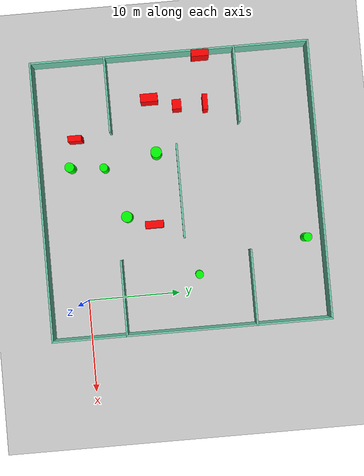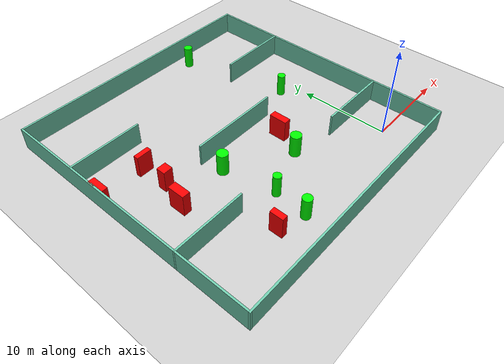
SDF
<sdf version="1.7">
 <world name="default">
  <light name="sun" type="directional">
   <pose>0 0 10 0 -0 0</pose>
   <diffuse>0.8 0.8 0.8 1</diffuse>
   <specular>0.2 0.2 0.2 1</specular>
   <attenuation>
    <range>1000</range>
    <constant>0.9</constant>
    <linear>0.01</linear>
    <quadratic>0.001</quadratic>
   </attenuation>
   <direction>-0.5 0.1 -0.9</direction>
   <spot><inner_angle>0</inner_angle><outer_angle>0</outer_angle><falloff>0</falloff></spot>
  </light>
  <model name="ground_plane">
   <static>1</static>
   <link name="link">
    <collision name="collision">
     <geometry><plane><normal>0 0 1</normal><size>100 100</size></plane></geometry>
     <surface>
      <contact><collide_bitmask>65535</collide_bitmask></contact>
      <friction><ode><mu>100</mu><mu2>50</mu2></ode></friction>
     </surface>
    </collision>
    <visual name="visual">
     <cast_shadows>0</cast_shadows>
     <geometry><plane><normal>0 0 1</normal><size>100 100</size></plane></geometry>
     <material>
      <script><uri>file://media/materials/scripts/gazebo.material</uri><name>Gazebo/Grey</name></script>
     </material>
    </visual>
   </link>
  </model>
  <gravity>0 0 -9.8</gravity>
  <magnetic_field>6e-06 2.3e-05 -4.2e-05</magnetic_field>
  <atmosphere type="adiabatic"/>
  <physics type="ode">
   <max_step_size>0.001</max_step_size>
   <real_time_factor>1</real_time_factor>
   <real_time_update_rate>1000</real_time_update_rate>
  </physics>
  <scene><ambient>0.4 0.4 0.4 1</ambient><background>0.7 0.7 0.7 1</background><shadows>1</shadows></scene>
  <spherical_coordinates>
   <surface_model>EARTH_WGS84</surface_model>
   <latitude_deg>0</latitude_deg>
   <longitude_deg>0</longitude_deg>
   <elevation>0</elevation>
   <heading_deg>0</heading_deg>
  </spherical_coordinates>
  <model name="my_base_walls">
   <link name="Wall_10">
    <collision name="Wall_10_Collision">
     <geometry><box><size>8.2 0.2 2.5</size></box></geometry>
     <pose>0 0 1.25 0 -0 0</pose>
    </collision>
    <visual name="Wall_10_Visual">
     <pose>0 0 1.25 0 -0 0</pose>
     <geometry><box><size>8.2 0.2 2.5</size></box></geometry>
     <material>
      <script><uri>file://media/materials/scripts/gazebo.material</uri><name>Gazebo/Grey</name></script>
      <ambient>0.435294 0.796078 0.67451 1</ambient>
     </material>
     <meta><layer>0</layer></meta>
    </visual>
    <pose>-11 -7 0 0 -0 0</pose>
   </link>
   <link name="Wall_12">
    <collision name="Wall_12_Collision">
     <geometry><box><size>8.2 0.2 2.5</size></box></geometry>
     <pose>0 0 1.25 0 -0 0</pose>
    </collision>
    <visual name="Wall_12_Visual">
     <pose>0 0 1.25 0 -0 0</pose>
     <geometry><box><size>8.2 0.2 2.5</size></box></geometry>
     <material>
      <script><uri>file://media/materials/scripts/gazebo.material</uri><name>Gazebo/Grey</name></script>
      <ambient>0.435294 0.796078 0.67451 1</ambient>
     </material>
     <meta><layer>0</layer></meta>
    </visual>
    <pose>-11 7 0 0 -0 0</pose>
   </link>
   <link name="Wall_14">
    <collision name="Wall_14_Collision">
     <geometry><box><size>8.2 0.2 2.5</size></box></geometry>
     <pose>0 0 1.25 0 -0 0</pose>
    </collision>
    <visual name="Wall_14_Visual">
     <pose>0 0 1.25 0 -0 0</pose>
     <geometry><box><size>8.2 0.2 2.5</size></box></geometry>
     <material>
      <script><uri>file://media/materials/scripts/gazebo.material</uri><name>Gazebo/Grey</name></script>
      <ambient>0.435294 0.796078 0.67451 1</ambient>
     </material>
     <meta><layer>0</layer></meta>
    </visual>
    <pose>11 7 0 0 -0 3.14159</pose>
   </link>
   <link name="Wall_16">
    <collision name="Wall_16_Collision">
     <geometry><box><size>10.2 0.2 2.5</size></box></geometry>
     <pose>0 0 1.25 0 -0 0</pose>
    </collision>
    <visual name="Wall_16_Visual">
     <pose>0 0 1.25 0 -0 0</pose>
     <geometry><box><size>10.2 0.2 2.5</size></box></geometry>
     <material>
      <script><uri>file://media/materials/scripts/gazebo.material</uri><name>Gazebo/Grey</name></script>
      <ambient>0.435294 0.796078 0.67451 1</ambient>
     </material>
     <meta><layer>0</layer></meta>
    </visual>
    <pose>0 0 0 0 -0 3.14159</pose>
   </link>
   <link name="Wall_2">
    <collision name="Wall_2_Collision">
     <geometry><box><size>30.2 0.2 2.5</size></box></geometry>
     <pose>0 0 1.25 0 -0 0</pose>
    </collision>
    <visual name="Wall_2_Visual">
     <pose>0 0 1.25 0 -0 0</pose>
     <geometry><box><size>30.2 0.2 2.5</size></box></geometry>
     <material>
      <script><uri>file://media/materials/scripts/gazebo.material</uri><name>Gazebo/Grey</name></script>
      <ambient>0.435294 0.796078 0.67451 1</ambient>
     </material>
     <meta><layer>0</layer></meta>
    </visual>
    <pose>0 -15 0 0 -0 3.14159</pose>
   </link>
   <link name="Wall_3">
    <collision name="Wall_3_Collision">
     <geometry><box><size>30.2 0.2 2.5</size></box></geometry>
     <pose>0 0 1.25 0 -0 0</pose>
    </collision>
    <visual name="Wall_3_Visual">
     <pose>0 0 1.25 0 -0 0</pose>
     <geometry><box><size>30.2 0.2 2.5</size></box></geometry>
     <material>
      <script><uri>file://media/materials/scripts/gazebo.material</uri><name>Gazebo/Grey</name></script>
      <ambient>0.435294 0.796078 0.67451 1</ambient>
     </material>
     <meta><layer>0</layer></meta>
    </visual>
    <pose>-15 0 0 0 -0 1.5708</pose>
   </link>
   <link name="Wall_4">
    <collision name="Wall_4_Collision">
     <geometry><box><size>30.2 0.2 2.5</size></box></geometry>
     <pose>0 0 1.25 0 -0 0</pose>
    </collision>
    <visual name="Wall_4_Visual">
     <pose>0 0 1.25 0 -0 0</pose>
     <geometry><box><size>30.2 0.2 2.5</size></box></geometry>
     <material>
      <script><uri>file://media/materials/scripts/gazebo.material</uri><name>Gazebo/Grey</name></script>
      <ambient>0.435294 0.796078 0.67451 1</ambient>
     </material>
     <meta><layer>0</layer></meta>
    </visual>
    <pose>0 15 0 0 -0 0</pose>
   </link>
   <link name="Wall_6">
    <collision name="Wall_6_Collision">
     <geometry><box><size>30.2 0.2 2.5</size></box></geometry>
     <pose>0 0 1.25 0 -0 0</pose>
    </collision>
    <visual name="Wall_6_Visual">
     <pose>0 0 1.25 0 -0 0</pose>
     <geometry><box><size>30.2 0.2 2.5</size></box></geometry>
     <material>
      <script><uri>file://media/materials/scripts/gazebo.material</uri><name>Gazebo/Grey</name></script>
      <ambient>0.435294 0.796078 0.67451 1</ambient>
     </material>
     <meta><layer>0</layer></meta>
    </visual>
    <pose>15 0 0 0 -0 1.5708</pose>
   </link>
   <link name="Wall_8">
    <collision name="Wall_8_Collision">
     <geometry><box><size>8.2 0.2 2.5</size></box></geometry>
     <pose>0 0 1.25 0 -0 0</pose>
    </collision>
    <visual name="Wall_8_Visual">
     <pose>0 0 1.25 0 -0 0</pose>
     <geometry><box><size>8.2 0.2 2.5</size></box></geometry>
     <material>
      <script><uri>file://media/materials/scripts/gazebo.material</uri><name>Gazebo/Grey</name></script>
      <ambient>0.435294 0.796078 0.67451 1</ambient>
     </material>
     <meta><layer>0</layer></meta>
    </visual>
    <pose>11 -7 0 0 -0 3.14159</pose>
   </link>
   <static>1</static>
   <pose>-11 11 0 0 -0 0</pose>
  </model>
  <model name="cylinder1">
   <static>1</static>
   <link name="link">
    <inertial>
     <mass>1</mass>
     <inertia><ixx>0.5</ixx><ixy>0</ixy><ixz>0</ixz><iyy>0.5</iyy><iyz>0</iyz><izz>1</izz></inertia>
    </inertial>
    <collision name="collision">
     <geometry><cylinder><radius>0.5119095114234558</radius><length>2.5</length></cylinder></geometry>
    </collision>
    <visual name="visual">
     <geometry><cylinder><radius>0.5119095114234558</radius><length>2.5</length></cylinder></geometry>
     <material>
      <ambient>0 1 0 1</ambient>
      <diffuse>0 1 0 1</diffuse>
      <specular>0.1 0.1 0.1 1</specular>
      <emissive>0 0 0 0</emissive>
     </material>
    </visual>
   </link>
   <pose>-14.506941030381133 -0.6643637389633557 1.25 0 0 0</pose>
  </model>
  <model name="cylinder2">
   <static>1</static>
   <link name="link">
    <inertial>
     <mass>1</mass>
     <inertia><ixx>0.5</ixx><ixy>0</ixy><ixz>0</ixz><iyy>0.5</iyy><iyz>0</iyz><izz>1</izz></inertia>
    </inertial>
    <collision name="collision">
     <geometry><cylinder><radius>0.47145731628303383</radius><length>2.5</length></cylinder></geometry>
    </collision>
    <visual name="visual">
     <geometry><cylinder><radius>0.47145731628303383</radius><length>2.5</length></cylinder></geometry>
     <material>
      <ambient>0 1 0 1</ambient>
      <diffuse>0 1 0 1</diffuse>
      <specular>0.1 0.1 0.1 1</specular>
      <emissive>0 0 0 0</emissive>
     </material>
    </visual>
   </link>
   <pose>-4.87040518404838 24.166180957121714 1.25 0 0 0</pose>
  </model>
  <model name="cylinder3">
   <static>1</static>
   <link name="link">
    <inertial>
     <mass>1</mass>
     <inertia><ixx>0.5</ixx><ixy>0</ixy><ixz>0</ixz><iyy>0.5</iyy><iyz>0</iyz><izz>1</izz></inertia>
    </inertial>
    <collision name="collision">
     <geometry><cylinder><radius>0.6024055432394579</radius><length>2.5</length></cylinder></geometry>
    </collision>
    <visual name="visual">
     <geometry><cylinder><radius>0.6024055432394579</radius><length>2.5</length></cylinder></geometry>
     <material>
      <ambient>0 1 0 1</ambient>
      <diffuse>0 1 0 1</diffuse>
      <specular>0.1 0.1 0.1 1</specular>
      <emissive>0 0 0 0</emissive>
     </material>
    </visual>
   </link>
   <pose>-15.343286615840876 8.744399276515534 1.25 0 0 0</pose>
  </model>
  <model name="cylinder4">
   <static>1</static>
   <link name="link">
    <inertial>
     <mass>1</mass>
     <inertia><ixx>0.5</ixx><ixy>0</ixy><ixz>0</ixz><iyy>0.5</iyy><iyz>0</iyz><izz>1</izz></inertia>
    </inertial>
    <collision name="collision">
     <geometry><cylinder><radius>0.5991107325434945</radius><length>2.5</length></cylinder></geometry>
    </collision>
    <visual name="visual">
     <geometry><cylinder><radius>0.5991107325434945</radius><length>2.5</length></cylinder></geometry>
     <material>
      <ambient>0 1 0 1</ambient>
      <diffuse>0 1 0 1</diffuse>
      <specular>0.1 0.1 0.1 1</specular>
      <emissive>0 0 0 0</emissive>
     </material>
    </visual>
   </link>
   <pose>-8.686007811135834 5.0272024769599515 1.25 0 0 0</pose>
  </model>
  <model name="cylinder5">
   <static>1</static>
   <link name="link">
    <inertial>
     <mass>1</mass>
     <inertia><ixx>0.5</ixx><ixy>0</ixy><ixz>0</ixz><iyy>0.5</iyy><iyz>0</iyz><izz>1</izz></inertia>
    </inertial>
    <collision name="collision">
     <geometry><cylinder><radius>0.43311361411054866</radius><length>2.5</length></cylinder></geometry>
    </collision>
    <visual name="visual">
     <geometry><cylinder><radius>0.43311361411054866</radius><length>2.5</length></cylinder></geometry>
     <material>
      <ambient>0 1 0 1</ambient>
      <diffuse>0 1 0 1</diffuse>
      <specular>0.1 0.1 0.1 1</specular>
      <emissive>0 0 0 0</emissive>
     </material>
    </visual>
   </link>
   <pose>-1.8573749942280209 12.288079209878074 1.25 0 0 0</pose>
  </model>
  <model name="cylinder6">
   <static>1</static>
   <link name="link">
    <inertial>
     <mass>1</mass>
     <inertia><ixx>0.5</ixx><ixy>0</ixy><ixz>0</ixz><iyy>0.5</iyy><iyz>0</iyz><izz>1</izz></inertia>
    </inertial>
    <collision name="collision">
     <geometry><cylinder><radius>0.4382208653768725</radius><length>2.5</length></cylinder></geometry>
    </collision>
    <visual name="visual">
     <geometry><cylinder><radius>0.4382208653768725</radius><length>2.5</length></cylinder></geometry>
     <material>
      <ambient>0 1 0 1</ambient>
      <diffuse>0 1 0 1</diffuse>
      <specular>0.1 0.1 0.1 1</specular>
      <emissive>0 0 0 0</emissive>
     </material>
    </visual>
   </link>
   <pose>-14.166437062237046 2.9989344815668133 1.25 0 0 0</pose>
  </model>
  <model name="box1">
   <static>1</static>
   <link name="link">
    <inertial>
     <mass>1</mass>
     <inertia><ixx>0.083</ixx><ixy>0</ixy><ixz>0</ixz><iyy>0.083</iyy><iyz>0</iyz><izz>0.083</izz></inertia>
    </inertial>
    <collision name="collision">
     <geometry><box><size>0.6405274590755653 1.4800120694932193 2.5</size></box></geometry>
    </collision>
    <visual name="visual">
     <geometry><box><size>0.6405274590755653 1.4800120694932193 2.5</size></box></geometry>
     <material>
      <ambient>1 0 0 1</ambient>
      <diffuse>1 0 0 1</diffuse>
      <specular>0.1 0.1 0.1 1</specular>
      <emissive>0 0 0 0</emissive>
     </material>
    </visual>
    <sensor name="my_contact" type="contact">
     <contact><collision>box_collision</collision><topic>__default_topic__</topic></contact>
    </sensor>
   </link>
   <pose>-17.559016748811796 0.1332785057121968 1.25 0 0 0</pose>
  </model>
  <model name="box2">
   <static>1</static>
   <link name="link">
    <inertial>
     <mass>1</mass>
     <inertia><ixx>0.083</ixx><ixy>0</ixy><ixz>0</ixz><iyy>0.083</iyy><iyz>0</iyz><izz>0.083</izz></inertia>
    </inertial>
    <collision name="collision">
     <geometry><box><size>1.0441448788479986 0.9856510487627249 2.5</size></box></geometry>
    </collision>
    <visual name="visual">
     <geometry><box><size>1.0441448788479986 0.9856510487627249 2.5</size></box></geometry>
     <material>
      <ambient>1 0 0 1</ambient>
      <diffuse>1 0 0 1</diffuse>
      <specular>0.1 0.1 0.1 1</specular>
      <emissive>0 0 0 0</emissive>
     </material>
    </visual>
    <sensor name="my_contact" type="contact">
     <contact><collision>box_collision</collision><topic>__default_topic__</topic></contact>
    </sensor>
   </link>
   <pose>-20.312481960059806 11.384160698103102 1.25 0 0 0</pose>
  </model>
  <model name="box3">
   <static>1</static>
   <link name="link">
    <inertial>
     <mass>1</mass>
     <inertia><ixx>0.083</ixx><ixy>0</ixy><ixz>0</ixz><iyy>0.083</iyy><iyz>0</iyz><izz>0.083</izz></inertia>
    </inertial>
    <collision name="collision">
     <geometry><box><size>0.7220963288873898 1.9057163309456786 2.5</size></box></geometry>
    </collision>
    <visual name="visual">
     <geometry><box><size>0.7220963288873898 1.9057163309456786 2.5</size></box></geometry>
     <material>
      <ambient>1 0 0 1</ambient>
      <diffuse>1 0 0 1</diffuse>
      <specular>0.1 0.1 0.1 1</specular>
      <emissive>0 0 0 0</emissive>
     </material>
    </visual>
    <sensor name="my_contact" type="contact">
     <contact><collision>box_collision</collision><topic>__default_topic__</topic></contact>
    </sensor>
   </link>
   <pose>-25.644190096572096 14.348918960806593 1.25 0 0 0</pose>
  </model>
  <model name="box4">
   <static>1</static>
   <link name="link">
    <inertial>
     <mass>1</mass>
     <inertia><ixx>0.083</ixx><ixy>0</ixy><ixz>0</ixz><iyy>0.083</iyy><iyz>0</iyz><izz>0.083</izz></inertia>
    </inertial>
    <collision name="collision">
     <geometry><box><size>1.6790079346987585 0.5436244334149203 2.5</size></box></geometry>
    </collision>
    <visual name="visual">
     <geometry><box><size>1.6790079346987585 0.5436244334149203 2.5</size></box></geometry>
     <material>
      <ambient>1 0 0 1</ambient>
      <diffuse>1 0 0 1</diffuse>
      <specular>0.1 0.1 0.1 1</specular>
      <emissive>0 0 0 0</emissive>
     </material>
    </visual>
    <sensor name="my_contact" type="contact">
     <contact><collision>box_collision</collision><topic>__default_topic__</topic></contact>
    </sensor>
   </link>
   <pose>-20.32380524167524 14.46029910235869 1.25 0 0 0</pose>
  </model>
  <model name="box5">
   <static>1</static>
   <link name="link">
    <inertial>
     <mass>1</mass>
     <inertia><ixx>0.083</ixx><ixy>0</ixy><ixz>0</ixz><iyy>0.083</iyy><iyz>0</iyz><izz>0.083</izz></inertia>
    </inertial>
    <collision name="collision">
     <geometry><box><size>0.797114797224242 1.974017195826562 2.5</size></box></geometry>
    </collision>
    <visual name="visual">
     <geometry><box><size>0.797114797224242 1.974017195826562 2.5</size></box></geometry>
     <material>
      <ambient>1 0 0 1</ambient>
      <diffuse>1 0 0 1</diffuse>
      <specular>0.1 0.1 0.1 1</specular>
      <emissive>0 0 0 0</emissive>
     </material>
    </visual>
    <sensor name="my_contact" type="contact">
     <contact><collision>box_collision</collision><topic>__default_topic__</topic></contact>
    </sensor>
   </link>
   <pose>-7.62674724088329 7.90830772956185 1.25 0 0 0</pose>
  </model>
  <model name="box6">
   <static>1</static>
   <link name="link">
    <inertial>
     <mass>1</mass>
     <inertia><ixx>0.083</ixx><ixy>0</ixy><ixz>0</ixz><iyy>0.083</iyy><iyz>0</iyz><izz>0.083</izz></inertia>
    </inertial>
    <collision name="collision">
     <geometry><box><size>0.8837566962392414 1.875227584755435 2.5</size></box></geometry>
    </collision>
    <visual name="visual">
     <geometry><box><size>0.8837566962392414 1.875227584755435 2.5</size></box></geometry>
     <material>
      <ambient>1 0 0 1</ambient>
      <diffuse>1 0 0 1</diffuse>
      <specular>0.1 0.1 0.1 1</specular>
      <emissive>0 0 0 0</emissive>
     </material>
    </visual>
    <sensor name="my_contact" type="contact">
     <contact><collision>box_collision</collision><topic>__default_topic__</topic></contact>
    </sensor>
   </link>
   <pose>-21.263796797002023 8.46036302841389 1.25 0 0 0</pose>
  </model>
 </world>
</sdf>
